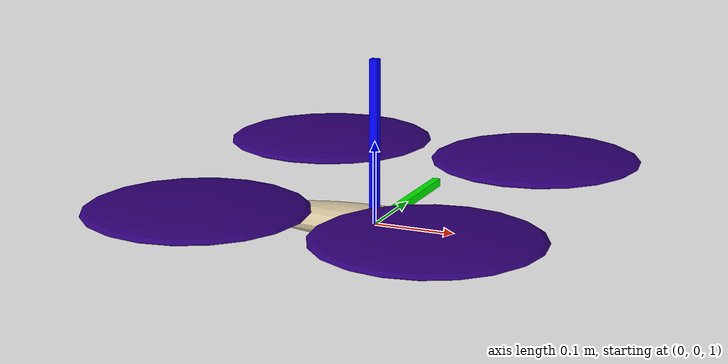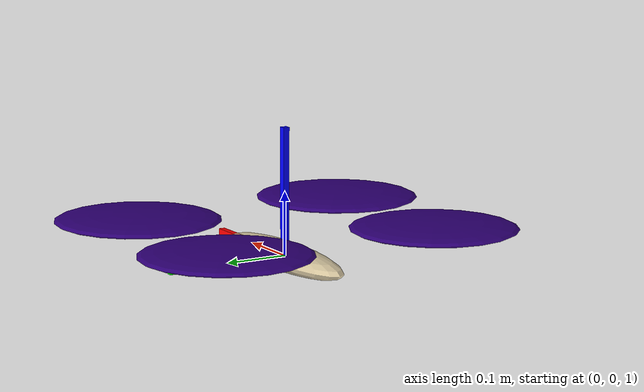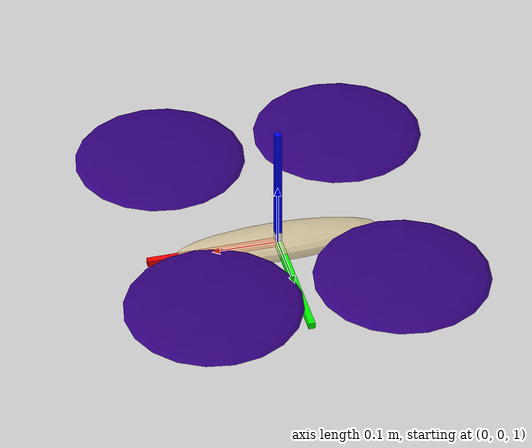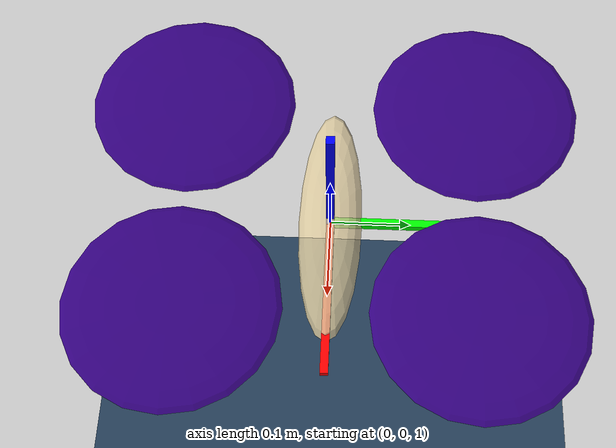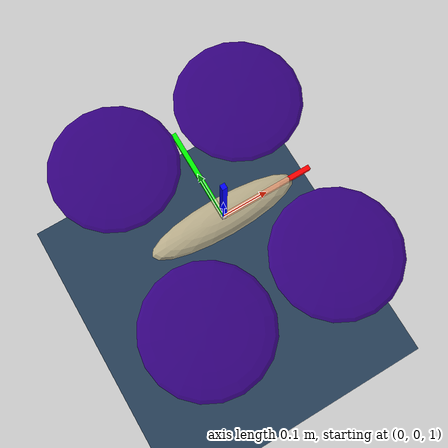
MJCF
<mujoco model="quadrotor0">
	<compiler inertiafromgeom="true" coordinate="local"/>
	<option	timestep="0.005" gravity="0 0 -9.81" density="1" viscosity="1e-5" />
    <default>
    <default class="x2">
      <geom mass="0"/>
      <motor ctrlrange="0 13"/>
      <mesh scale="0.01 0.01 0.01"/>
      <default class="visual">
        <geom group="2" type="mesh" contype="0" conaffinity="0"/>
      </default>
      <default class="collision">
        <geom group="3" type="box"/>
        <default class="rotor">
          <geom type="ellipsoid" size=".13 .13 .01"/>
        </default>
      </default>
      <site group="5"/>
    </default>
    </default>
	<asset>
		<texture type="skybox" builtin="gradient" rgb1=".3 .5 .7" rgb2="0 0 0" width="32" height="512"/>
		<texture name="body" type="cube" builtin="flat" mark="cross" width="128" height="128" rgb1="0.8 0.6 0.4" rgb2="0.8 0.6 0.4" markrgb="1 1 1" random="0.01"/>
		<material name="body" texture="body" texuniform="true" rgba="0.8 0.6 .4 1"/>
		<texture name="grid" type="2d" builtin="checker" width="512" height="512" rgb1=".1 .2 .3" rgb2=".2 .3 .4"/>
		<material name="grid" texture="grid" texrepeat="1 1" texuniform="true" reflectance=".2"/>
	</asset>
	<worldbody>
		<geom name="floor" pos="0 0 0" size="0 0 .05" type="plane" material="grid" condim="3"/>
        <light pos="0 0 1.5" dir="0 0 -1" directional="true"/>
		<body name="quadrotor" pos="0 0 1">
            <geom name="core" size=".16 .04 .02" pos="0 0 0.00" type="ellipsoid" rgba="0.9 0.82 0.63 0.8" mass=".325"/>
            <geom name="rotor1" type="ellipsoid" size=".13 .13 .01" pos="-.14 -.18 .05" rgba="0.2 0 0.5 1" mass=".25"/>
            <geom name="rotor2" type="ellipsoid" size=".13 .13 .01" pos="-.14 .18 .05" rgba="0.2 0 0.5 1" mass=".25"/>
            <geom name="rotor3" type="ellipsoid" size=".13 .13 .01" pos=".14 .18 .05" rgba="0.2 0 0.5 1" mass=".25"/>
            <geom name="rotor4" type="ellipsoid" size=".13 .13 .01" pos=".14 -.18 .05" rgba="0.2 0 0.5 1" mass=".25"/>
            <joint name="root"   type="free" damping="0" armature="0" pos="0 0 0" />
            <site name="thrust1" pos="-.14 -.18 .05"/>
            <site name="thrust2" pos="-.14 .18 .05"/>
            <site name="thrust3" pos=".14 .18 .05"/>
            <site name="thrust4" pos=".14 -.18 .05"/>

            <!-- Visualization of the coordinate frame -->
			<site name="qcX" type="box" pos="0.1 0.0 0.0" size="0.1 0.005 0.005"  quat = " 1.000  0.0  0.0    0."     rgba="1 0 0 1" />
			<site name="qcY" type="box" pos="0.0 0.1 0.0" size="0.1 0.005 0.005"  quat = " 0.707  0.0  0.0    0.707"  rgba="0 1 0 1" />
			<site name="qcZ" type="box" pos="0.0 0.0 0.1" size="0.1 0.005 0.005"  quat = "-0.707  0.0  0.707  0."     rgba="0 0 1 1" />
		</body>
	</worldbody>
    <actuator>
        <motor ctrlrange="0 100" name="thrust1" site="thrust1" gear="0 0 1 0 0 -.0201"/>
        <motor ctrlrange="0 100" name="thrust2" site="thrust2" gear="0 0 1 0 0  .0201"/>
        <motor ctrlrange="0 100" name="thrust3" site="thrust3" gear="0 0 1 0 0 -.0201"/>
        <motor ctrlrange="0 100" name="thrust4" site="thrust4" gear="0 0 1 0 0  .0201"/>
	</actuator>
</mujoco>
